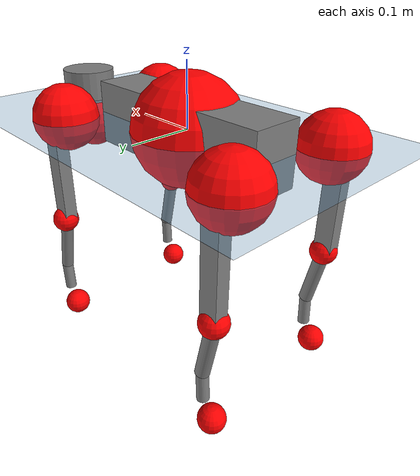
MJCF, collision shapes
<mujoco model="go2">
  <compiler angle="radian" assetdir="assets" balanceinertia="true" inertiafromgeom="false"/>

  <option timestep="0.005" density="1.2" viscosity="2e-05"/>

  <size nkey="1"/>

  <visual>
    <quality shadowsize="8192"/>
    <map shadowclip="0.5"/>
  </visual>

  <default>
    <default class="/">
      <geom contype="0" conaffinity="0" group="1" solref="-1000 -80"/>
      <site size="0.01 0.005 0.005" group="5"/>
      <general forcelimited="true" biastype="affine" gainprm="20" biasprm="0 -20 -0.5"/>
      <default class="go2">
        <joint armature="0.01" damping="0.01" frictionloss="0.2"/>
        <geom condim="1" margin="0.001"/>
        <default class="visual">
          <geom type="mesh" group="2"/>
        </default>
        <default class="collision">
          <geom group="3"/>
          <default class="foot">
            <geom size="0.022 0 0" condim="6" priority="1" friction="0.8 0.02 0.01" solimp="0.015 1 0.022"/>
          </default>
        </default>
        <default class="reward_collision_sphere">
          <geom group="5" rgba="1 0 0 1"/>
        </default>
      </default>
    </default>
  </default>

  <asset>
    <texture type="skybox" colorspace="auto" name="//unnamed_texture_0" builtin="gradient" rgb1="0.95 0.95 0.95" rgb2="0.95 0.95 0.95" width="100" height="600"/>
    <texture type="2d" colorspace="auto" name="texplane" builtin="checker" rgb1="0.345 0.575 0.748" rgb2="0.345 0.575 0.748" markrgb="1 1 1" width="512" height="512"/>
    <material name="MatPlane" class="/" texture="texplane" texuniform="true" texrepeat="2 2" specular="0.9"/>
    <material name="metal" class="/" rgba="0.9 0.95 0.95 1"/>
    <material name="black" class="/" rgba="0 0 0 1"/>
    <material name="white" class="/"/>
    <material name="gray" class="/" rgba="0.671705 0.692426 0.77427 1"/>
    <mesh name="base_0" class="/" file="base_0.obj"/>
    <mesh name="base_1" class="/" file="base_1.obj"/>
    <mesh name="base_2" class="/" file="base_2.obj"/>
    <mesh name="base_3" class="/" file="base_3.obj"/>
    <mesh name="base_4" class="/" file="base_4.obj"/>
    <mesh name="hip_0" class="/" file="hip_0.obj"/>
    <mesh name="hip_1" class="/" file="hip_1.obj"/>
    <mesh name="thigh_0" class="/" file="thigh_0.obj"/>
    <mesh name="thigh_1" class="/" file="thigh_1.obj"/>
    <mesh name="thigh_mirror_0" class="/" file="thigh_mirror_0.obj"/>
    <mesh name="thigh_mirror_1" class="/" file="thigh_mirror_1.obj"/>
    <mesh name="calf_0" class="/" file="calf_0.obj"/>
    <mesh name="calf_1" class="/" file="calf_1.obj"/>
    <mesh name="calf_mirror_0" class="/" file="calf_mirror_0.obj"/>
    <mesh name="calf_mirror_1" class="/" file="calf_mirror_1.obj"/>
    <mesh name="foot" class="/" file="foot.obj"/>
  </asset>

  <worldbody>
    <geom name="floor" class="/" size="100 100 0.125" type="plane" group="0" material="MatPlane"/>
    <light name="toplight_shadow" class="/" pos="0 0 5" dir="0.0990148 0.0990148 -0.990148" type="directional" ambient="0.04 0.04 0.04" diffuse="0.55 0.55 0.55" specular="0.12 0.12 0.12"/>
    <light name="toplight_fill" class="/" pos="0 0 5" dir="0.0990148 0.0990148 -0.990148" type="directional" castshadow="false" ambient="0.04 0.04 0.04" diffuse="0.3 0.3 0.3" specular="0.08 0.08 0.08"/>
    <body name="trunk" childclass="go2" pos="-0.00238444 -0.000955306 -0.0011787" quat="0.999999 0.000751213 0.000196808 0.000632129">
      <inertial pos="0.0182297 0.00105221 -0.0046786" quat="0.0125623 0.711506 -0.000265159 0.702567" mass="4.57202" diaginertia="0.0762254 0.043293 0.0102323"/>
      <joint name="//unnamed_joint_0" type="free" armature="0" damping="0" frictionloss="0"/>
      <geom name="//unnamed_geom_1" class="visual" material="black" mesh="base_0"/>
      <geom name="//unnamed_geom_2" class="visual" material="black" mesh="base_1"/>
      <geom name="//unnamed_geom_3" class="visual" material="black" mesh="base_2"/>
      <geom name="//unnamed_geom_4" class="visual" material="white" mesh="base_3"/>
      <geom name="//unnamed_geom_5" class="visual" material="gray" mesh="base_4"/>
      <geom name="trunk_1" class="collision" size="0.164132 0.0407931 0.049737" type="box"/>
      <geom name="trunk_2" class="collision" size="0.043629 0.0392661" pos="0.265315 0 0.00837452" type="cylinder"/>
      <geom name="trunk_3" class="collision" size="0.0410112" pos="0.272762 0 -0.0502471"/>
      <geom name="//unnamed_geom_9" class="reward_collision_sphere" size="0.0872579"/>
      <geom name="//unnamed_geom_10" class="reward_collision_sphere" size="0.0523548" pos="0.26066 0 -0.0376854"/>
      <site name="imu" pos="-0.016171 -0.0117723 0.0355527" size="0.00872579"/>
      <camera name="track" pos="0 -1.69871 0" quat="0.707107 0.707107 0 0" mode="trackcom"/>
      <camera name="ego_camera" pos="0.29045 0 0.0376854" quat="-0.5 -0.5 0.5 0.5"/>
      <body name="FL_hip" pos="0.17927 0.0406823 -0.000184641" quat="0.999999 -0.00124274 0.00046726 0.000537127">
        <inertial pos="-0.0062365 0.00161697 0.000691931" quat="0.493433 0.498351 0.499699 0.5084" mass="0.465458" diaginertia="0.000637859 0.000271417 0.000207587"/>
        <joint name="FL_hip_joint" pos="0 0 0" axis="0.99994 -0.00072083 0.0109597" stiffness="0.0024303" range="-0.99348 1.05678" armature="0.00989778" damping="0" frictionloss="0.183349"/>
        <geom name="//unnamed_geom_11" class="visual" material="metal" mesh="hip_0"/>
        <geom name="//unnamed_geom_12" class="visual" material="gray" mesh="hip_1"/>
        <geom name="//unnamed_geom_13" class="collision" size="0.0401386 0.0174516" pos="0 0.0679486 0" quat="0.707107 0.707107 0 0" type="cylinder"/>
        <geom name="//unnamed_geom_14" class="reward_collision_sphere" size="0.0523548" pos="0 0.059455 0"/>
        <body name="FL_thigh" pos="-0.00180213 0.0816016 0.00042312" quat="1 0.000173563 0.000268741 5.86555e-05">
          <inertial pos="-0.00421195 -0.0214535 -0.0297028" quat="0.829997 0.0817631 -0.0199123 0.551384" mass="0.778038" diaginertia="0.00411739 0.00254264 0.000358241"/>
          <joint name="FL_thigh_joint" pos="0 0 0" axis="0.0013484 0.999996 -0.00263583" stiffness="0.00600594" range="-1.57602 3.53812" armature="0.00821073" damping="0" frictionloss="0.173605"/>
          <geom name="//unnamed_geom_15" class="visual" material="metal" mesh="thigh_0"/>
          <geom name="//unnamed_geom_16" class="visual" material="gray" mesh="thigh_1"/>
          <geom name="//unnamed_geom_17" class="collision" size="0.0929297 0.0106891 0.0148338" pos="0 0 -0.0891887" quat="0.707107 0 0.707107 0" type="box"/>
          <body name="FL_calf" pos="0.00231995 0.0023607 -0.176277" quat="1 -8.56436e-05 6.04981e-05 -3.66645e-05">
            <inertial pos="0.00643828 -0.00176765 -0.11594" quat="0.710571 0.00211024 -0.00571837 0.7036" mass="0.166921" diaginertia="0.00107863 0.000659151 2.19698e-05"/>
            <joint name="FL_calf_joint" pos="0 0 0" axis="-0.0110431 0.999934 0.00318577" range="-2.68231 -0.891779" armature="0.00853505" damping="0" frictionloss="0.181635"/>
            <geom name="//unnamed_geom_18" class="visual" material="gray" mesh="calf_0"/>
            <geom name="//unnamed_geom_19" class="visual" material="black" mesh="calf_1"/>
            <geom name="FL_calf0" class="collision" size="0.010471 0.0523548" pos="0.00744743 0 -0.0502471" quat="0.994493 0 -0.104807 0" type="cylinder"/>
            <geom name="//unnamed_geom_21" class="collision" size="0.00959837 0.0283588" pos="0.0186186 0 -0.123943" quat="0.999688 0 0.0249974 0" type="cylinder"/>
            <geom name="//unnamed_geom_22" class="visual" pos="0 0 -0.178377" quat="1 0 0 0" material="black" mesh="foot"/>
            <geom name="FL_foot" class="foot" size="0.0172657" pos="-0.00186186 0 -0.178377"/>
            <geom name="//unnamed_geom_24" class="reward_collision_sphere" size="0.0218145"/>
            <geom name="//unnamed_geom_25" class="reward_collision_sphere" size="0.0218145" pos="-0.00186186 0 -0.178377"/>
            <site name="FL_foot" class="foot" pos="-0.00186186 0 -0.178377" size="0.00872579"/>
          </body>
        </body>
      </body>
      <body name="FR_hip" pos="0.181974 -0.0376393 0.00287602" quat="1 -1.91083e-05 8.69062e-05 -0.000122989">
        <inertial pos="-0.00403565 -0.00374377 8.92845e-05" quat="0.489451 0.501814 0.508462 0.500088" mass="0.467336" diaginertia="0.000628255 0.000273727 0.000201536"/>
        <joint name="FR_hip_joint" pos="0 0 0" axis="0.999996 0.00218932 0.00163064" range="-0.99841 1.04848" armature="0.0087149" damping="0.0159415" frictionloss="0.17264"/>
        <geom name="//unnamed_geom_26" class="visual" pos="0 1.03709e-10 4.4483e-09" quat="4.63268e-05 1 0 0" material="metal" mesh="hip_0"/>
        <geom name="//unnamed_geom_27" class="visual" pos="0 1.68125e-10 -1.10023e-08" quat="4.63268e-05 1 0 0" material="gray" mesh="hip_1"/>
        <geom name="//unnamed_geom_28" class="collision" size="0.0401386 0.0174516" pos="0 -0.0679486 0" quat="0.707107 0.707107 0 0" type="cylinder"/>
        <geom name="//unnamed_geom_29" class="reward_collision_sphere" size="0.0523548" pos="0 -0.059455 0"/>
        <body name="FR_thigh" pos="0.00161081 -0.0805559 -0.00192351" quat="1 7.51801e-05 -0.000212254 -4.69219e-06">
          <inertial pos="-0.00363822 0.0190706 -0.029962" quat="0.556673 -0.0124563 0.0785188 0.826919" mass="0.786563" diaginertia="0.00422797 0.00267019 0.00037419"/>
          <joint name="FR_thigh_joint" pos="0 0 0" axis="0.000965331 -0.999999 0.000612764" stiffness="0.00383557" range="-3.54396 1.62276" armature="0.00765982" damping="0.0112736" frictionloss="0.166026"/>
          <geom name="//unnamed_geom_30" class="visual" material="metal" mesh="thigh_mirror_0"/>
          <geom name="//unnamed_geom_31" class="visual" material="gray" mesh="thigh_mirror_1"/>
          <geom name="//unnamed_geom_32" class="collision" size="0.0929297 0.0106891 0.0148338" pos="0 0 -0.0891887" quat="0.707107 0 0.707107 0" type="box"/>
          <body name="FR_calf" pos="-0.000898829 -0.000558622 -0.17836" quat="1 9.7656e-06 -1.95708e-07 -2.06211e-05">
            <inertial pos="0.00480352 0.00124882 -0.116285" quat="0.69951 -0.000730393 -0.000877507 0.714622" mass="0.150779" diaginertia="0.00101791 0.000647664 2.05422e-05"/>
            <joint name="FR_calf_joint" pos="0 0 0" axis="-0.0012329 -0.999999 3.50076e-05" range="0.846388 2.69684" armature="0.00986702" damping="0.0157681" frictionloss="0.173931"/>
            <geom name="//unnamed_geom_33" class="visual" material="gray" mesh="calf_mirror_0"/>
            <geom name="//unnamed_geom_34" class="visual" material="black" mesh="calf_mirror_1"/>
            <geom name="FR_calf0" class="collision" size="0.0113435 0.0523548" pos="0.00930928 0 -0.0502471" quat="0.995004 0 -0.0998334 0" type="cylinder"/>
            <geom name="//unnamed_geom_36" class="collision" size="0.00959837 0.0283588" pos="0.0186186 0 -0.123943" quat="0.999688 0 0.0249974 0" type="cylinder"/>
            <geom name="//unnamed_geom_37" class="visual" pos="0 0 -0.178377" quat="1 0 0 0" material="black" mesh="foot"/>
            <geom name="FR_foot" class="foot" size="0.0205198" pos="-0.00186186 0 -0.178377"/>
            <geom name="//unnamed_geom_39" class="reward_collision_sphere" size="0.0218145"/>
            <geom name="//unnamed_geom_40" class="reward_collision_sphere" size="0.0218145" pos="-0.00186186 0 -0.178377"/>
            <site name="FR_foot" class="foot" pos="-0.00186186 0 -0.178377" size="0.00872579"/>
          </body>
        </body>
      </body>
      <body name="RL_hip" pos="-0.178854 0.0380989 -0.00156006" quat="1 5.76777e-05 -6.36903e-05 -8.14614e-05">
        <inertial pos="0.00517547 0.00267634 -0.00217148" quat="0.509254 0.497417 0.495698 0.497515" mass="0.470434" diaginertia="0.000645625 0.000258722 0.000199038"/>
        <joint name="RL_hip_joint" pos="0 0 0" axis="-0.999797 0.00885981 -0.0181094" range="-0.997665 1.10167" armature="0.0087517" damping="0" frictionloss="0.198511"/>
        <geom name="//unnamed_geom_41" class="visual" pos="-8.14326e-10 0 -1.59627e-07" quat="4.63268e-05 0 1 0" material="metal" mesh="hip_0"/>
        <geom name="//unnamed_geom_42" class="visual" pos="-1.32012e-09 0 -1.41566e-07" quat="4.63268e-05 0 1 0" material="gray" mesh="hip_1"/>
        <geom name="//unnamed_geom_43" class="collision" size="0.0401386 0.0174516" pos="0 0.0679486 0" quat="0.707107 0.707107 0 0" type="cylinder"/>
        <geom name="//unnamed_geom_44" class="reward_collision_sphere" size="0.0523548" pos="0 0.059455 0"/>
        <body name="RL_thigh" pos="0.000319373 0.0815068 0.000262582" quat="1 -5.43958e-05 3.44644e-05 1.42453e-05">
          <inertial pos="-0.00622995 -0.0194741 -0.0298284" quat="0.829596 0.0983467 -0.0202956 0.54926" mass="0.780081" diaginertia="0.00404341 0.00261437 0.000351577"/>
          <joint name="RL_thigh_joint" pos="0 0 0" axis="-0.0125867 0.999833 0.0132255" stiffness="0.00157172" range="-0.577603 4.55884" armature="0.0087487" damping="0" frictionloss="0.170943"/>
          <geom name="//unnamed_geom_45" class="visual" material="metal" mesh="thigh_0"/>
          <geom name="//unnamed_geom_46" class="visual" material="gray" mesh="thigh_1"/>
          <geom name="//unnamed_geom_47" class="collision" size="0.0929297 0.0106891 0.0148338" pos="0 0 -0.0891887" quat="0.707107 0 0.707107 0" type="box"/>
          <body name="RL_calf" pos="-0.00150366 -0.000421434 -0.181437" quat="1 -1.4112e-05 1.56418e-05 -2.09436e-05">
            <inertial pos="0.00730974 -0.00232708 -0.116289" quat="0.708225 -0.00939295 0.00233163 0.705921" mass="0.154845" diaginertia="0.00104293 0.000647581 2.1863e-05"/>
            <joint name="RL_calf_joint" pos="0 0 0" axis="-0.00217929 0.99998 -0.00598629" range="-2.73131 -0.835007" armature="0.00848123" damping="0.0015591" frictionloss="0.189613"/>
            <geom name="//unnamed_geom_48" class="visual" material="gray" mesh="calf_0"/>
            <geom name="//unnamed_geom_49" class="visual" material="black" mesh="calf_1"/>
            <geom name="RL_calf0" class="collision" size="0.0113435 0.0523548" pos="0.00930928 0 -0.0502471" quat="0.995004 0 -0.0998334 0" type="cylinder"/>
            <geom name="//unnamed_geom_51" class="collision" size="0.00959837 0.0283588" pos="0.0186186 0 -0.123943" quat="0.999688 0 0.0249974 0" type="cylinder"/>
            <geom name="//unnamed_geom_52" class="visual" pos="0 0 -0.178377" quat="1 0 0 0" material="black" mesh="foot"/>
            <geom name="RL_foot" class="foot" size="0.0181892" pos="-0.00186186 0 -0.178377"/>
            <geom name="//unnamed_geom_54" class="reward_collision_sphere" size="0.0218145"/>
            <geom name="//unnamed_geom_55" class="reward_collision_sphere" size="0.0218145" pos="-0.00186186 0 -0.178377"/>
            <site name="RL_foot" class="foot" pos="-0.00186186 0 -0.178377" size="0.00872579"/>
          </body>
        </body>
      </body>
      <body name="RR_hip" pos="-0.179957 -0.0402495 -0.000378753" quat="1 0.000215345 0.000236732 6.62331e-05">
        <inertial pos="0.00539957 0.00126631 -0.00264159" quat="0.499033 0.496929 0.498288 0.505704" mass="0.439807" diaginertia="0.000606587 0.000258586 0.000192001"/>
        <joint name="RR_hip_joint" pos="0 0 0" axis="-0.999987 -0.00261271 0.00441416" stiffness="0.00169272" range="-1.04086 0.993878" armature="0.00812555" damping="0" frictionloss="0.173986"/>
        <geom name="//unnamed_geom_56" class="visual" pos="8.11501e-10 1.03709e-10 -1.64075e-07" quat="2.14617e-09 4.63268e-05 4.63268e-05 -1" material="metal" mesh="hip_0"/>
        <geom name="//unnamed_geom_57" class="visual" pos="1.3271e-09 1.68125e-10 -1.30564e-07" quat="2.14617e-09 4.63268e-05 4.63268e-05 -1" material="gray" mesh="hip_1"/>
        <geom name="//unnamed_geom_58" class="collision" size="0.0401386 0.0174516" pos="0 -0.0679486 0" quat="0.707107 0.707107 0 0" type="cylinder"/>
        <geom name="//unnamed_geom_59" class="reward_collision_sphere" size="0.0523548" pos="0 -0.059455 0"/>
        <body name="RR_thigh" pos="-0.00118253 -0.0817449 0.00191099" quat="1 -6.72095e-05 0.000145601 -0.000160711">
          <inertial pos="-0.00524854 0.0215411 -0.0274688" quat="0.551596 -0.0201385 0.0848218 0.829543" mass="0.714471" diaginertia="0.00405881 0.00251017 0.00036146"/>
          <joint name="RR_thigh_joint" pos="0 0 0" axis="-0.00196192 -0.999994 -0.00288728" stiffness="0.00929445" range="-4.59067 0.578779" armature="0.00906336" damping="0.0133354" frictionloss="0.150752"/>
          <geom name="//unnamed_geom_60" class="visual" material="metal" mesh="thigh_mirror_0"/>
          <geom name="//unnamed_geom_61" class="visual" material="gray" mesh="thigh_mirror_1"/>
          <geom name="//unnamed_geom_62" class="collision" size="0.0929297 0.0106891 0.0148338" pos="0 0 -0.0891887" quat="0.707107 0 0.707107 0" type="box"/>
          <body name="RR_calf" pos="0.00294975 -0.00104828 -0.179466" quat="1 -0.000334641 -0.000215888 0.000418268">
            <inertial pos="0.0055303 0.000696454 -0.118325" quat="0.701197 -0.00811482 0.000187358 0.712922" mass="0.151036" diaginertia="0.00102648 0.00063192 2.12993e-05"/>
            <joint name="RR_calf_joint" pos="0 0 0" axis="-0.000257062 -1 -0.000883634" range="0.828323 2.75813" armature="0.008401" damping="0.00545304" frictionloss="0.169838"/>
            <geom name="//unnamed_geom_63" class="visual" material="gray" mesh="calf_mirror_0"/>
            <geom name="//unnamed_geom_64" class="visual" material="black" mesh="calf_mirror_1"/>
            <geom name="RR_calf0" class="collision" size="0.0113435 0.0523548" pos="0.00930928 0 -0.0502471" quat="0.995004 0 -0.0998334 0" type="cylinder"/>
            <geom name="//unnamed_geom_66" class="collision" size="0.00959837 0.0283588" pos="0.0186186 0 -0.123943" quat="0.999688 0 0.0249974 0" type="cylinder"/>
            <geom name="//unnamed_geom_67" class="visual" pos="0 0 -0.178377" quat="1 0 0 0" material="black" mesh="foot"/>
            <geom name="RR_foot" class="foot" size="0.0211333" pos="-0.00186186 0 -0.178377"/>
            <geom name="//unnamed_geom_69" class="reward_collision_sphere" size="0.0218145"/>
            <geom name="//unnamed_geom_70" class="reward_collision_sphere" size="0.0218145" pos="-0.00186186 0 -0.178377"/>
            <site name="RR_foot" class="foot" pos="-0.00186186 0 -0.178377" size="0.00872579"/>
          </body>
        </body>
      </body>
    </body>
  </worldbody>

  <contact>
    <pair class="/" geom1="floor" geom2="FL_foot" name="//unnamed_contact_0"/>
    <pair class="/" geom1="floor" geom2="FR_foot" name="//unnamed_contact_1"/>
    <pair class="/" geom1="floor" geom2="RL_foot" name="//unnamed_contact_2"/>
    <pair class="/" geom1="floor" geom2="RR_foot" name="//unnamed_contact_3"/>
  </contact>

  <actuator>
    <general name="FL_hip" class="/" joint="FL_hip_joint" forcerange="-19.8564 19.8564" gainprm="17.7066" biasprm="0 -17.7066 -0.468152"/>
    <general name="FL_thigh" class="/" joint="FL_thigh_joint" forcerange="-22.8287 22.8287" gainprm="17.7066" biasprm="0 -17.7066 -0.468152"/>
    <general name="FL_calf" class="/" joint="FL_calf_joint" forcerange="-35.5392 35.5392" gainprm="17.7066" biasprm="0 -17.7066 -0.468152"/>
    <general name="FR_hip" class="/" joint="FR_hip_joint" forcerange="-20.2723 20.2723" gainprm="17.7066" biasprm="0 -17.7066 -0.468152"/>
    <general name="FR_thigh" class="/" joint="FR_thigh_joint" forcerange="-21.9779 21.9779" gainprm="17.7066" biasprm="0 -17.7066 -0.468152"/>
    <general name="FR_calf" class="/" joint="FR_calf_joint" forcerange="-42.1184 42.1184" gainprm="17.7066" biasprm="0 -17.7066 -0.468152"/>
    <general name="RL_hip" class="/" joint="RL_hip_joint" forcerange="-22.6868 22.6868" gainprm="17.7066" biasprm="0 -17.7066 -0.468152"/>
    <general name="RL_thigh" class="/" joint="RL_thigh_joint" forcerange="-21.5738 21.5738" gainprm="17.7066" biasprm="0 -17.7066 -0.468152"/>
    <general name="RL_calf" class="/" joint="RL_calf_joint" forcerange="-40.0245 40.0245" gainprm="17.7066" biasprm="0 -17.7066 -0.468152"/>
    <general name="RR_hip" class="/" joint="RR_hip_joint" forcerange="-20.3987 20.3987" gainprm="17.7066" biasprm="0 -17.7066 -0.468152"/>
    <general name="RR_thigh" class="/" joint="RR_thigh_joint" forcerange="-18.8214 18.8214" gainprm="17.7066" biasprm="0 -17.7066 -0.468152"/>
    <general name="RR_calf" class="/" joint="RR_calf_joint" forcerange="-35.6403 35.6403" gainprm="17.7066" biasprm="0 -17.7066 -0.468152"/>
  </actuator>

  <sensor>
    <gyro site="imu" name="imu_angular_velocity"/>
    <velocimeter site="imu" name="imu_linear_velocity"/>
    <framelinvel objtype="site" objname="FL_foot" name="FL_foot_global_linear_velocity"/>
    <framelinvel objtype="site" objname="FR_foot" name="FR_foot_global_linear_velocity"/>
    <framelinvel objtype="site" objname="RL_foot" name="RL_foot_global_linear_velocity"/>
    <framelinvel objtype="site" objname="RR_foot" name="RR_foot_global_linear_velocity"/>
  </sensor>

  <keyframe>
    <key name="home" qpos="0 0 0.325 1 0 0 0 0.1 0.8 -1.5 -0.1 -0.8 1.5 -0.1 0.8 -1.5 0.1 -0.8 1.5"/>
  </keyframe>
</mujoco>
